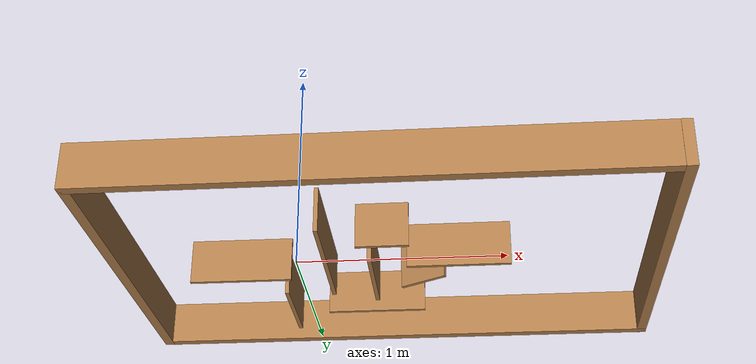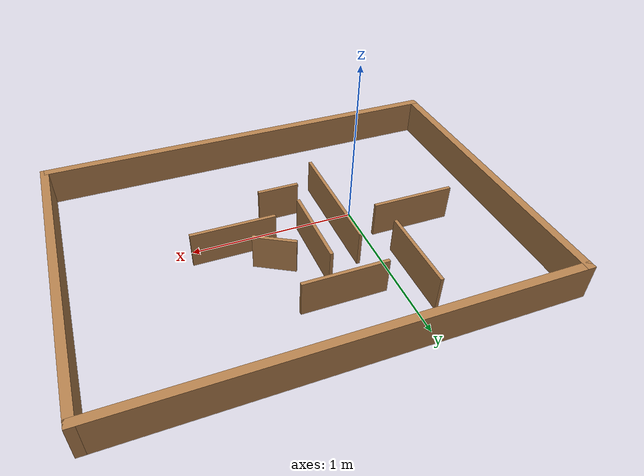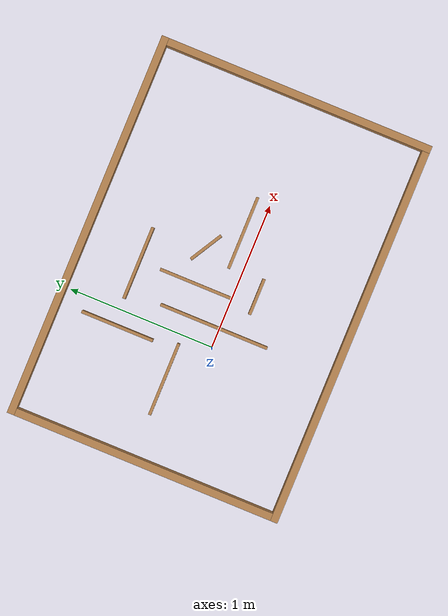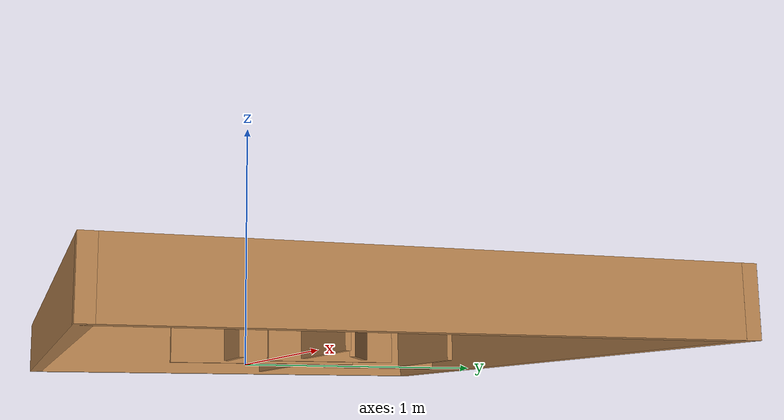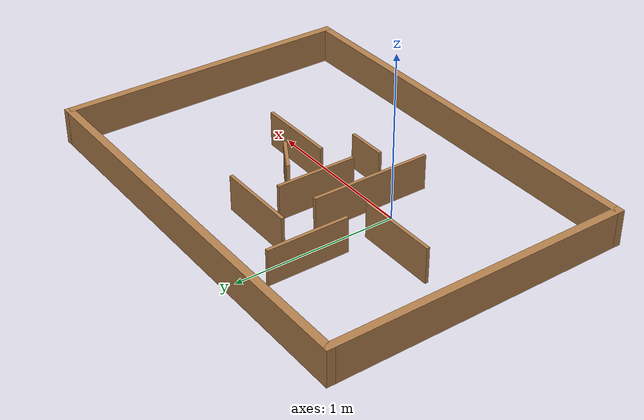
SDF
<?xml version='1.0'?>
<sdf version='1.7'>
  <model name='ob_world'>
    <pose>0.431 0.123 0 0 -0 0</pose>
    <link name='Wall_0'>
      <collision name='Wall_0_Collision'>
        <geometry>
          <box>
            <size>0.75 0.02 0.22</size>
          </box>
        </geometry>
        <pose>0 0 0.11 0 -0 0</pose>
      </collision>
      <visual name='Wall_0_Visual'>
        <pose>0 0 0.11 0 -0 0</pose>
        <geometry>
          <box>
            <size>0.75 0.02 0.22</size>
          </box>
        </geometry>
        <material>
          <script>
            <uri>file://media/materials/scripts/gazebo.material</uri>
            <name>Gazebo/Wood</name>
          </script>
          <ambient>1 1 1 1</ambient>
        </material>
        <meta>
          <layer>0</layer>
        </meta>
      </visual>
      <pose>-0.297441 -0.081663 0 0 -0 -1.5708</pose>
    </link>
    <link name='Wall_11'>
      <collision name='Wall_11_Collision'>
        <geometry>
          <box>
            <size>0.5 0.02 0.22</size>
          </box>
        </geometry>
        <pose>0 0 0.11 0 -0 0</pose>
      </collision>
      <visual name='Wall_11_Visual'>
        <pose>0 0 0.11 0 -0 0</pose>
        <geometry>
          <box>
            <size>0.5 0.02 0.22</size>
          </box>
        </geometry>
        <material>
          <script>
            <uri>file://media/materials/scripts/gazebo.material</uri>
            <name>Gazebo/Wood</name>
          </script>
          <ambient>1 1 1 1</ambient>
        </material>
        <meta>
          <layer>0</layer>
        </meta>
      </visual>
      <pose>-0.102278 0.529572 0 0 -0 0</pose>
    </link>
    <link name='Wall_14'>
      <collision name='Wall_14_Collision'>
        <geometry>
          <box>
            <size>0.5 0.02 0.22</size>
          </box>
        </geometry>
        <pose>0 0 0.11 0 -0 0</pose>
      </collision>
      <visual name='Wall_14_Visual'>
        <pose>0 0 0.11 0 -0 0</pose>
        <geometry>
          <box>
            <size>0.5 0.02 0.22</size>
          </box>
        </geometry>
        <material>
          <script>
            <uri>file://media/materials/scripts/gazebo.material</uri>
            <name>Gazebo/Wood</name>
          </script>
          <ambient>1 1 1 1</ambient>
        </material>
        <meta>
          <layer>0</layer>
        </meta>
      </visual>
      <pose>0.337678 -0.026819 0 0 -0 0</pose>
    </link>
    <link name='Wall_16'>
      <collision name='Wall_16_Collision'>
        <geometry>
          <box>
            <size>0.25 0.02 0.22</size>
          </box>
        </geometry>
        <pose>0 0 0.11 0 -0 0</pose>
      </collision>
      <visual name='Wall_16_Visual'>
        <pose>0 0 0.11 0 -0 0</pose>
        <geometry>
          <box>
            <size>0.25 0.02 0.22</size>
          </box>
        </geometry>
        <material>
          <script>
            <uri>file://media/materials/scripts/gazebo.material</uri>
            <name>Gazebo/Wood</name>
          </script>
          <ambient>1 1 1 1</ambient>
        </material>
        <meta>
          <layer>0</layer>
        </meta>
      </visual>
      <pose>0.158543 0.161447 0 0 -0 2.61799</pose>
    </link>
    <link name='Wall_18'>
      <collision name='Wall_18_Collision'>
        <geometry>
          <box>
            <size>2.65004 0.05 0.22</size>
          </box>
        </geometry>
        <pose>0 0 0.11 0 -0 0</pose>
      </collision>
      <visual name='Wall_18_Visual'>
        <pose>0 0 0.11 0 -0 0</pose>
        <geometry>
          <box>
            <size>2.65004 0.05 0.22</size>
          </box>
        </geometry>
        <material>
          <script>
            <uri>file://media/materials/scripts/gazebo.material</uri>
            <name>Gazebo/Wood</name>
          </script>
          <ambient>1 1 1 1</ambient>
        </material>
        <meta>
          <layer>0</layer>
        </meta>
      </visual>
      <pose>0 0.925 0 0 -0 0</pose>
    </link>
    <link name='Wall_19'>
      <collision name='Wall_19_Collision'>
        <geometry>
          <box>
            <size>1.90039 0.05 0.22</size>
          </box>
        </geometry>
        <pose>0 0 0.11 0 -0 0</pose>
      </collision>
      <visual name='Wall_19_Visual'>
        <pose>0 0 0.11 0 -0 0</pose>
        <geometry>
          <box>
            <size>1.90039 0.05 0.22</size>
          </box>
        </geometry>
        <material>
          <script>
            <uri>file://media/materials/scripts/gazebo.material</uri>
            <name>Gazebo/Wood</name>
          </script>
          <ambient>1 1 1 1</ambient>
        </material>
        <meta>
          <layer>0</layer>
        </meta>
      </visual>
      <pose>1.3 -0 0 0 -0 -1.5708</pose>
    </link>
    <link name='Wall_20'>
      <collision name='Wall_20_Collision'>
        <geometry>
          <box>
            <size>2.65 0.05 0.22</size>
          </box>
        </geometry>
        <pose>0 0 0.11 0 -0 0</pose>
      </collision>
      <visual name='Wall_20_Visual'>
        <pose>0 0 0.11 0 -0 0</pose>
        <geometry>
          <box>
            <size>2.65 0.05 0.22</size>
          </box>
        </geometry>
        <material>
          <script>
            <uri>file://media/materials/scripts/gazebo.material</uri>
            <name>Gazebo/Wood</name>
          </script>
          <ambient>1 1 1 1</ambient>
        </material>
        <meta>
          <layer>0</layer>
        </meta>
      </visual>
      <pose>0 -0.925 0 0 -0 3.14159</pose>
    </link>
    <link name='Wall_21'>
      <collision name='Wall_21_Collision'>
        <geometry>
          <box>
            <size>1.89961 0.05 0.22</size>
          </box>
        </geometry>
        <pose>0 0 0.11 0 -0 0</pose>
      </collision>
      <visual name='Wall_21_Visual'>
        <pose>0 0 0.11 0 -0 0</pose>
        <geometry>
          <box>
            <size>1.89961 0.05 0.22</size>
          </box>
        </geometry>
        <material>
          <script>
            <uri>file://media/materials/scripts/gazebo.material</uri>
            <name>Gazebo/Wood</name>
          </script>
          <ambient>1 1 1 1</ambient>
        </material>
        <meta>
          <layer>0</layer>
        </meta>
      </visual>
      <pose>-1.3 -0 0 0 -0 1.5708</pose>
    </link>
    <link name='Wall_3'>
      <collision name='Wall_3_Collision'>
        <geometry>
          <box>
            <size>0.25 0.02 0.22</size>
          </box>
        </geometry>
        <pose>0 0 0.11 0 -0 0</pose>
      </collision>
      <visual name='Wall_3_Visual'>
        <pose>0 0 0.11 0 -0 0</pose>
        <geometry>
          <box>
            <size>0.25 0.02 0.22</size>
          </box>
        </geometry>
        <material>
          <script>
            <uri>file://media/materials/scripts/gazebo.material</uri>
            <name>Gazebo/Wood</name>
          </script>
          <ambient>1 1 1 1</ambient>
        </material>
        <meta>
          <layer>0</layer>
        </meta>
      </visual>
      <pose>-0.012715 -0.267407 0 0 -0 0</pose>
    </link>
    <link name='Wall_5'>
      <collision name='Wall_5_Collision'>
        <geometry>
          <box>
            <size>0.5 0.02 0.22</size>
          </box>
        </geometry>
        <pose>0 0 0.11 0 -0 0</pose>
      </collision>
      <visual name='Wall_5_Visual'>
        <pose>0 0 0.11 0 -0 0</pose>
        <geometry>
          <box>
            <size>0.5 0.02 0.22</size>
          </box>
        </geometry>
        <material>
          <script>
            <uri>file://media/materials/scripts/gazebo.material</uri>
            <name>Gazebo/Wood</name>
          </script>
          <ambient>1 1 1 1</ambient>
        </material>
        <meta>
          <layer>0</layer>
        </meta>
      </visual>
      <pose>-0.085999 0.132477 0 0 -0 -1.5708</pose>
    </link>
    <link name='Wall_7'>
      <collision name='Wall_7_Collision'>
        <geometry>
          <box>
            <size>0.5 0.02 0.22</size>
          </box>
        </geometry>
        <pose>0 0 0.11 0 -0 0</pose>
      </collision>
      <visual name='Wall_7_Visual'>
        <pose>0 0 0.11 0 -0 0</pose>
        <geometry>
          <box>
            <size>0.5 0.02 0.22</size>
          </box>
        </geometry>
        <material>
          <script>
            <uri>file://media/materials/scripts/gazebo.material</uri>
            <name>Gazebo/Wood</name>
          </script>
          <ambient>1 1 1 1</ambient>
        </material>
        <meta>
          <layer>0</layer>
        </meta>
      </visual>
      <pose>-0.737386 0.086659 0 0 -0 0</pose>
    </link>
    <link name='Wall_9'>
      <collision name='Wall_9_Collision'>
        <geometry>
          <box>
            <size>0.5 0.02 0.22</size>
          </box>
        </geometry>
        <pose>0 0 0.11 0 -0 0</pose>
      </collision>
      <visual name='Wall_9_Visual'>
        <pose>0 0 0.11 0 -0 0</pose>
        <geometry>
          <box>
            <size>0.5 0.02 0.22</size>
          </box>
        </geometry>
        <material>
          <script>
            <uri>file://media/materials/scripts/gazebo.material</uri>
            <name>Gazebo/Wood</name>
          </script>
          <ambient>1 1 1 1</ambient>
        </material>
        <meta>
          <layer>0</layer>
        </meta>
      </visual>
      <pose>-0.534104 0.500247 0 0 -0 -1.5708</pose>
    </link>
    <static>1</static>
  </model>
</sdf>
